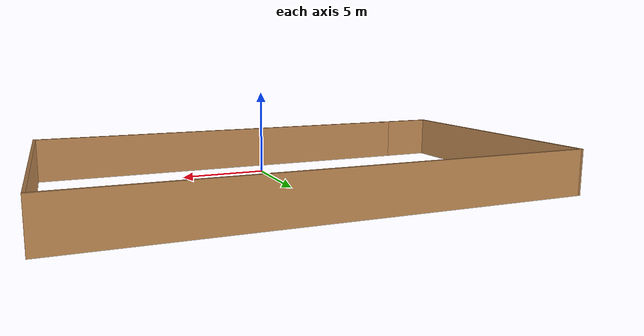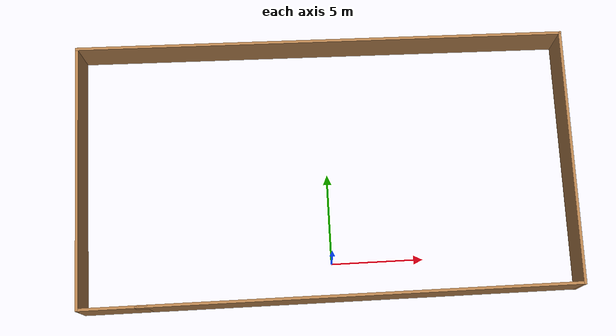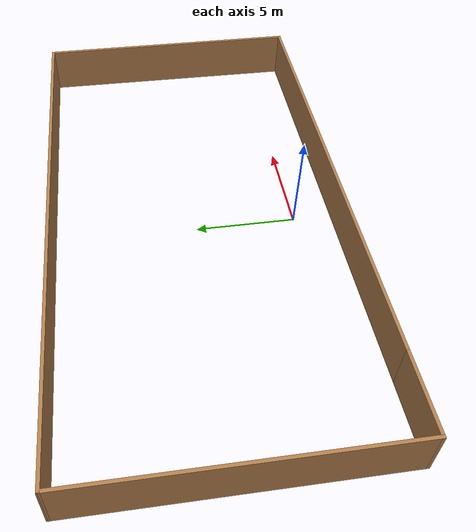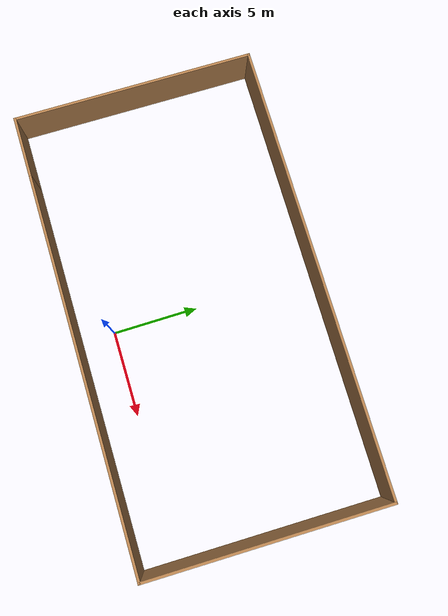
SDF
<?xml version='1.0'?>
<sdf version='1.7'>
  <model name='car1_test'>
    <pose>-0.077069 5.16793 0 0 -0 0</pose>
    <link name='Wall_1'>
      <collision name='Wall_1_Collision'>
        <geometry>
          <box>
            <size>23.6436 0.15 2.5</size>
          </box>
        </geometry>
        <pose>0 0 1.25 0 -0 0</pose>
      </collision>
      <visual name='Wall_1_Visual'>
        <pose>0 0 1.25 0 -0 0</pose>
        <geometry>
          <box>
            <size>23.6436 0.15 2.5</size>
          </box>
        </geometry>
        <material>
          <script>
            <uri>file://media/materials/scripts/gazebo.material</uri>
            <name>Gazebo/Wood</name>
          </script>
          <ambient>1 1 1 1</ambient>
        </material>
        <meta>
          <layer>0</layer>
        </meta>
      </visual>
      <pose>1.4708 -7.17268 0 0 -0 0</pose>
    </link>
    <link name='Wall_10'>
      <collision name='Wall_10_Collision'>
        <geometry>
          <box>
            <size>14.0004 0.15 2.5</size>
          </box>
        </geometry>
        <pose>0 0 1.25 0 -0 0</pose>
      </collision>
      <visual name='Wall_10_Visual'>
        <pose>0 0 1.25 0 -0 0</pose>
        <geometry>
          <box>
            <size>14.0004 0.15 2.5</size>
          </box>
        </geometry>
        <material>
          <script>
            <uri>file://media/materials/scripts/gazebo.material</uri>
            <name>Gazebo/Wood</name>
          </script>
          <ambient>1 1 1 1</ambient>
        </material>
        <meta>
          <layer>0</layer>
        </meta>
      </visual>
      <pose>13.308 -0.253083 0 0 -0 -1.57848</pose>
    </link>
    <link name='Wall_5'>
      <collision name='Wall_5_Collision'>
        <geometry>
          <box>
            <size>3.75 0.15 2.5</size>
          </box>
        </geometry>
        <pose>0 0 1.25 0 -0 0</pose>
      </collision>
      <visual name='Wall_5_Visual'>
        <pose>0 0 1.25 0 -0 0</pose>
        <geometry>
          <box>
            <size>3.75 0.15 2.5</size>
          </box>
        </geometry>
        <material>
          <script>
            <uri>file://media/materials/scripts/gazebo.material</uri>
            <name>Gazebo/Wood</name>
          </script>
          <ambient>1 1 1 1</ambient>
        </material>
        <meta>
          <layer>0</layer>
        </meta>
      </visual>
      <pose>-11.5612 -7.17268 0 0 -0 0</pose>
    </link>
    <link name='Wall_8'>
      <collision name='Wall_8_Collision'>
        <geometry>
          <box>
            <size>14.5 0.15 2.5</size>
          </box>
        </geometry>
        <pose>0 0 1.25 0 -0 0</pose>
      </collision>
      <visual name='Wall_8_Visual'>
        <pose>0 0 1.25 0 -0 0</pose>
        <geometry>
          <box>
            <size>14.5 0.15 2.5</size>
          </box>
        </geometry>
        <material>
          <script>
            <uri>file://media/materials/scripts/gazebo.material</uri>
            <name>Gazebo/Wood</name>
          </script>
          <ambient>1 1 1 1</ambient>
        </material>
        <meta>
          <layer>0</layer>
        </meta>
      </visual>
      <pose>-13.3612 0.002321 0 0 -0 1.5708</pose>
    </link>
    <link name='Wall_9'>
      <collision name='Wall_9_Collision'>
        <geometry>
          <box>
            <size>26.8772 0.15 2.5</size>
          </box>
        </geometry>
        <pose>0 0 1.25 0 -0 0</pose>
      </collision>
      <visual name='Wall_9_Visual'>
        <pose>0 0 1.25 0 -0 0</pose>
        <geometry>
          <box>
            <size>26.8772 0.15 2.5</size>
          </box>
        </geometry>
        <material>
          <script>
            <uri>file://media/materials/scripts/gazebo.material</uri>
            <name>Gazebo/Wood</name>
          </script>
          <ambient>1 1 1 1</ambient>
        </material>
        <meta>
          <layer>0</layer>
        </meta>
      </visual>
      <pose>-0 6.93792 0 0 -0 -0.017916</pose>
    </link>
    <static>1</static>
  </model>
</sdf>
